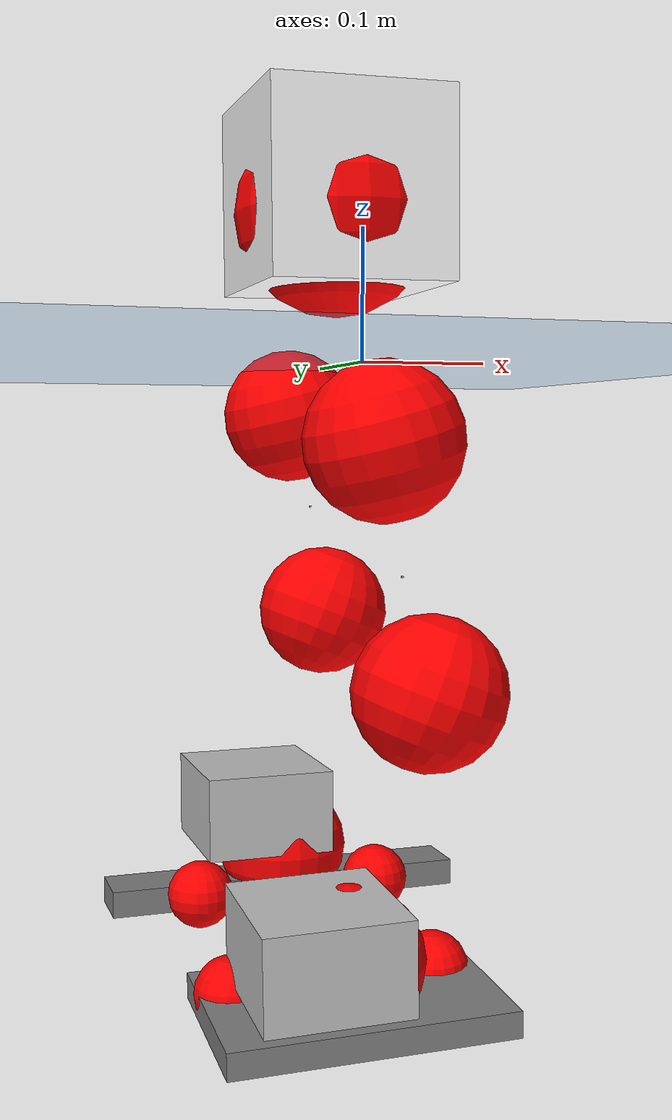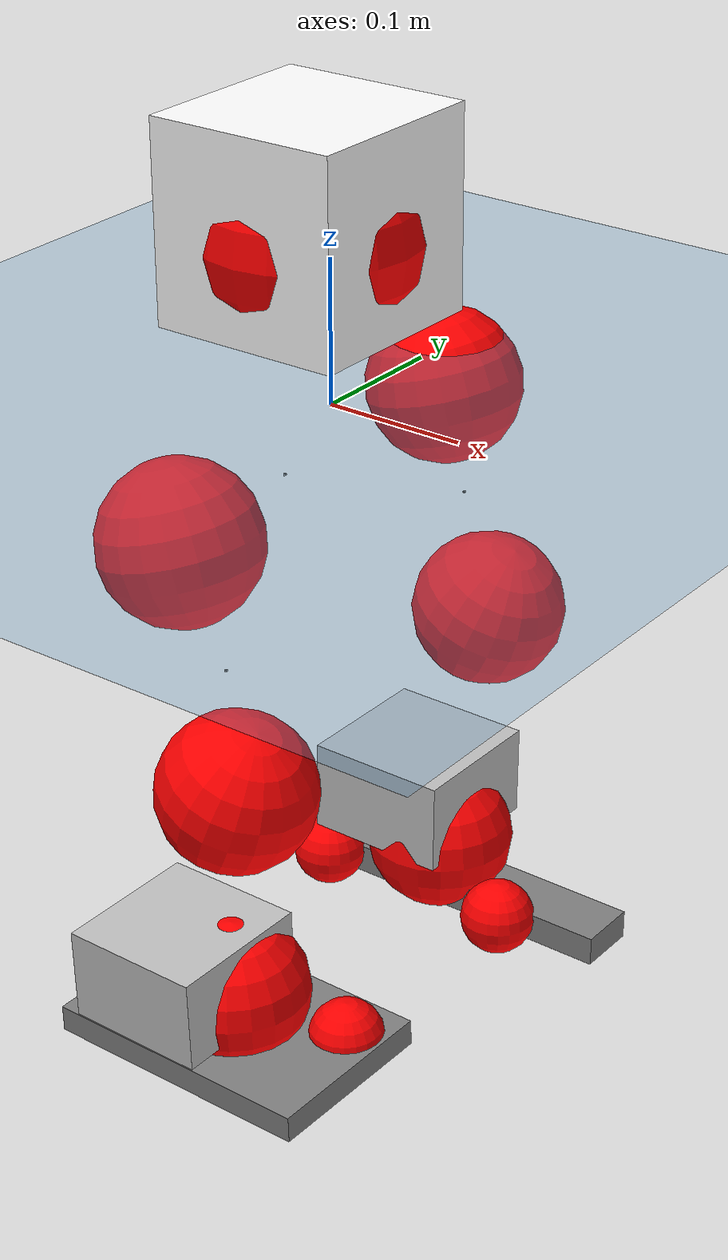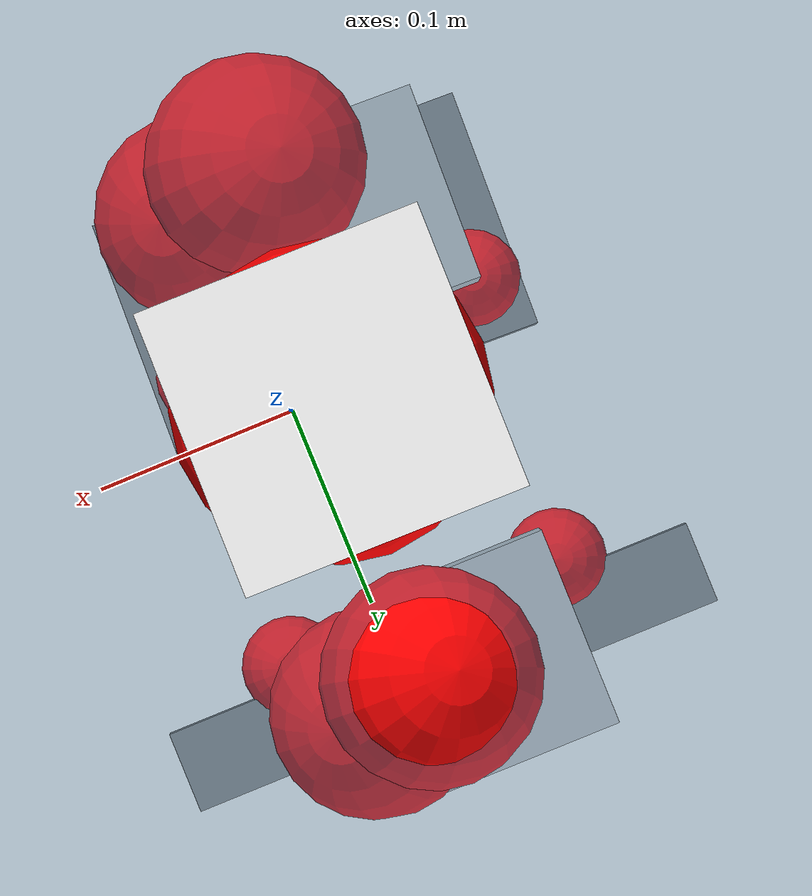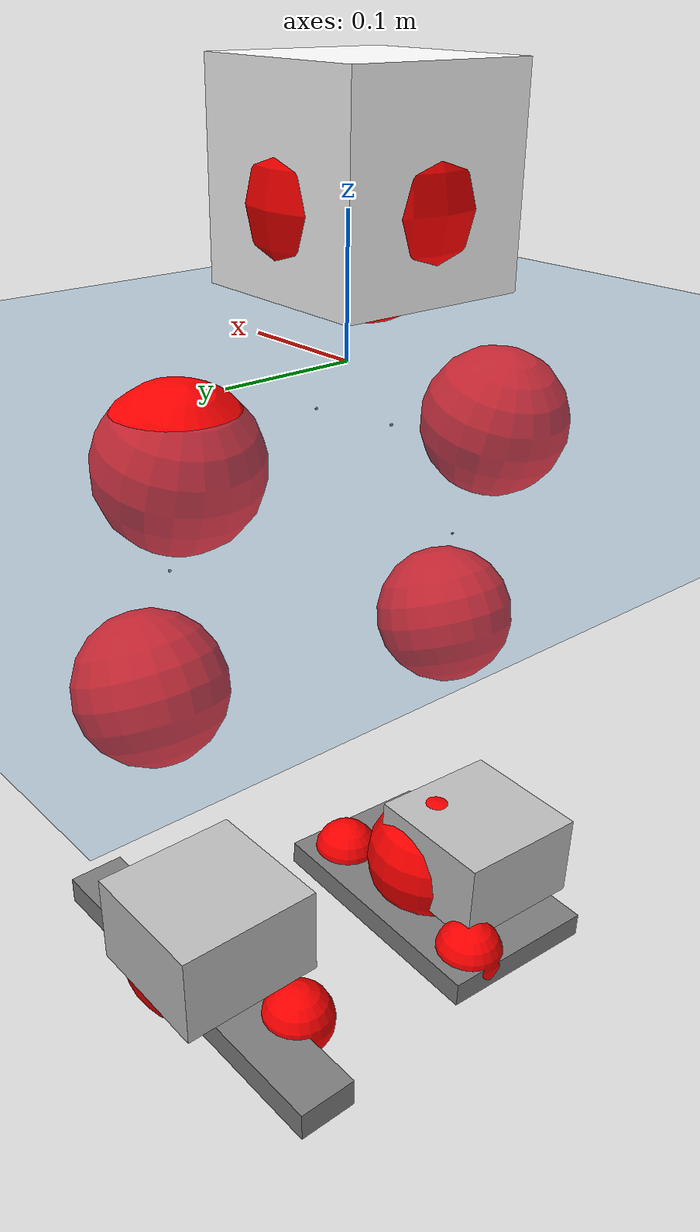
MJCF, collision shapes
<mujoco model="pi_12dof_release_v1">
  <compiler angle="radian" assetdir="assets" balanceinertia="true" inertiafromgeom="false"/>

  <option timestep="0.005" density="1.2" viscosity="2e-05"/>

  <size nkey="1"/>

  <visual>
    <quality shadowsize="8192"/>
    <map shadowclip="0.5"/>
  </visual>

  <default>
    <default class="/">
      <joint armature="0.01" damping="0.01" frictionloss="0.01"/>
      <geom contype="0" conaffinity="0" group="1" solref="-1000 -80"/>
      <site size="0.01 0.005 0.005" group="5"/>
      <general forcelimited="true" biastype="affine" gainprm="20" biasprm="0 -20 -0.5"/>
      <default class="foot">
        <geom size="0.0845 0.036 0.005" type="box" condim="6" group="4" priority="1" friction="0.9 0.2 0.2" solimp="0.015 1 0.005"/>
      </default>
      <default class="reward_collision_sphere">
        <geom group="5" rgba="1 0 0 1"/>
      </default>
    </default>
  </default>

  <asset>
    <texture type="skybox" colorspace="auto" name="//unnamed_texture_0" builtin="gradient" rgb1="0.95 0.95 0.95" rgb2="0.95 0.95 0.95" width="100" height="600"/>
    <texture type="2d" colorspace="auto" name="texplane" builtin="checker" rgb1="0.345 0.575 0.748" rgb2="0.345 0.575 0.748" markrgb="1 1 1" width="512" height="512"/>
    <material name="MatPlane" class="/" texture="texplane" texuniform="true" texrepeat="2 2" specular="0.9"/>
    <mesh name="baselink_1" class="/" file="baselink_1.STL"/>
    <mesh name="r_hip_pitch_link" class="/" file="r_hip_pitch_link.STL"/>
    <mesh name="r_hip_roll_link" class="/" file="r_hip_roll_link.STL"/>
    <mesh name="r_thigh_link" class="/" file="r_thigh_link.STL"/>
    <mesh name="r_calf_link" class="/" file="r_calf_link.STL"/>
    <mesh name="r_ankle_pitch_link" class="/" file="r_ankle_pitch_link.STL"/>
    <mesh name="r_ankle_roll_link" class="/" file="r_ankle_roll_link.STL"/>
    <mesh name="l_hip_pitch_link" class="/" file="l_hip_pitch_link.STL"/>
    <mesh name="l_hip_roll_link" class="/" file="l_hip_roll_link.STL"/>
    <mesh name="l_thigh_link" class="/" file="l_thigh_link.STL"/>
    <mesh name="l_calf_link" class="/" file="l_calf_link.STL"/>
    <mesh name="l_ankle_pitch_link" class="/" file="l_ankle_pitch_link.STL"/>
    <mesh name="l_ankle_roll_link" class="/" file="l_ankle_roll_link.STL"/>
  </asset>

  <worldbody>
    <geom name="floor" class="/" size="100 100 0.125" type="plane" group="0" material="MatPlane"/>
    <light name="toplight_shadow" class="/" pos="0 0 5" dir="0.0990148 0.0990148 -0.990148" type="directional" ambient="0.04 0.04 0.04" diffuse="0.55 0.55 0.55" specular="0.12 0.12 0.12"/>
    <light name="toplight_fill" class="/" pos="0 0 5" dir="0.0990148 0.0990148 -0.990148" type="directional" castshadow="false" ambient="0.04 0.04 0.04" diffuse="0.3 0.3 0.3" specular="0.08 0.08 0.08"/>
    <body name="trunk" pos="-0.0184292 0.00413848 0.010721" quat="0.999964 0.000130331 -0.00565177 -0.00632848">
      <inertial pos="0.0205245 -0.0104908 0.062336" quat="0.70678 -0.0170862 0.014581 0.707077" mass="6.21384" diaginertia="0.0178943 0.0824451 0.0174286"/>
      <joint name="//unnamed_joint_0" type="free"/>
      <geom name="//unnamed_geom_1" class="/" type="mesh" density="0" rgba="1 1 1 1" mesh="baselink_1"/>
      <geom name="//unnamed_geom_2" class="/" size="0.0692799 0.0692799 0.0692799" pos="0 0 0.112088" type="box" rgba="1 1 1 1"/>
      <geom name="//unnamed_geom_3" class="reward_collision_sphere" size="0.0762079" pos="0 0 0.0980768"/>
      <site name="imu" class="/" pos="0.0220453 -0.0582222 -0.082627" size="0.013856"/>
      <camera name="track" class="/" pos="0 -3.19108 0" quat="0.707107 0.707107 0 0" mode="trackcom"/>
      <camera name="ego_camera" class="/" pos="0.0870115 0 0.252198" quat="-0.5 -0.5 0.5 0.5"/>
      <body name="r_hip_pitch_link" pos="-0.000540153 -0.0291422 -0.0561793" quat="0.992309 0.00179255 -0.123677 -0.00482236">
        <inertial pos="-0.0059457 -0.0742343 0.00510643" quat="-0.0344769 0.711824 -0.0440002 0.70013" mass="1.01843" diaginertia="0.000159975 0.000794564 0.000443486"/>
        <joint name="r_hip_pitch_joint" class="/" pos="0 0 0" axis="0.0373559 -0.998465 0.0408824" stiffness="0.0393281" range="-1.52719 1.13173" armature="0.020206" damping="0" frictionloss="0.00410379"/>
        <geom name="//unnamed_geom_4" class="/" type="mesh" density="0" rgba="0.75294 0.75294 0.75294 1" mesh="r_hip_pitch_link"/>
        <geom name="//unnamed_geom_5" class="/" size="0.000692799 0.000692799 0.000692799" type="box" rgba="0.75294 0.75294 0.75294 1"/>
        <body name="r_hip_roll_link" pos="-0.0107691 -0.0951017 -0.0118238" quat="0.99997 0.00193815 -0.00619157 0.00434647">
          <inertial pos="-0.0158254 0.0132171 -0.068416" quat="0.705101 -0.0792559 -0.0824787 0.69982" mass="1.27261" diaginertia="0.000711667 0.00319925 0.000622469"/>
          <joint name="r_hip_roll_joint" class="/" pos="0 0 0" axis="-0.997513 -0.0478994 -0.0517016" range="0.037638 0.773819" armature="0.0201263" damping="0.0861122" frictionloss="0.00323699"/>
          <geom name="//unnamed_geom_6" class="/" type="mesh" density="0" rgba="0.75294 0.75294 0.75294 1" mesh="r_hip_roll_link"/>
          <geom name="//unnamed_geom_7" class="/" size="0.000692799 0.000692799 0.000692799" type="box" rgba="0.75294 0.75294 0.75294 1"/>
          <geom name="//unnamed_geom_8" class="reward_collision_sphere" size="0.0554239"/>
          <body name="r_thigh_link" pos="-0.00544759 0.016925 -0.0950927" quat="0.99998 0.00285076 1.88613e-06 -0.00562185">
            <inertial pos="0.0151567 0.00365323 -0.0798164" quat="0.73215 0.679477 -0.0476116 -4.81392e-05" mass="0.282625" diaginertia="0.000231598 0.000628899 0.00021447"/>
            <joint name="r_thigh_joint" class="/" pos="0 0 0" axis="-0.000117555 0.000318107 -1" stiffness="0.0611282" range="-0.00564165 0.34921" armature="0.0216094" damping="0" frictionloss="0.0266742"/>
            <geom name="//unnamed_geom_9" class="/" type="mesh" density="0" rgba="0.75294 0.75294 0.75294 1" mesh="r_thigh_link"/>
            <geom name="//unnamed_geom_10" class="/" size="0.000692799 0.000692799 0.000692799" type="box" rgba="0.75294 0.75294 0.75294 1"/>
            <body name="r_calf_link" pos="-0.00539728 -0.012447 -0.0813455" quat="0.948099 0.00483454 0.317895 -0.00519775">
              <inertial pos="-0.0116104 0.0142568 -0.0965804" quat="0.996884 -0.0398461 0.0672701 0.010488" mass="2.16262" diaginertia="0.0100064 0.0412315 0.00125635"/>
              <joint name="r_calf_joint" class="/" pos="0 0 0" axis="0.055251 -0.99695 0.055125" stiffness="0.0788927" range="-2.00864 0.750646" armature="0.0185397" damping="0" frictionloss="0.00392512"/>
              <geom name="//unnamed_geom_11" class="/" type="mesh" density="0" rgba="0.75294 0.75294 0.75294 1" mesh="r_calf_link"/>
              <geom name="//unnamed_geom_12" class="/" size="0.000692799 0.000692799 0.000692799" type="box" rgba="0.75294 0.75294 0.75294 1"/>
              <geom name="//unnamed_geom_13" class="reward_collision_sphere" size="0.0554239"/>
              <body name="r_ankle_pitch_link" pos="-0.00122088 0.0182158 -0.196533" quat="0.980146 -0.00106097 -0.198273 -0.00109271">
                <inertial pos="-0.00634918 0.01991 0.00466287" quat="-0.0139484 0.690376 -0.061118 0.720729" mass="0.447974" diaginertia="0.000776714 0.00288785 0.000593959"/>
                <joint name="r_ankle_pitch_joint" class="/" pos="0 0 0" axis="-0.0471755 -0.996333 -0.0713849" range="-1.50826 0.530968" armature="0.0112056" damping="0.0817258" frictionloss="0.00558922"/>
                <geom name="//unnamed_geom_14" class="/" type="mesh" density="0" rgba="0.75294 0.75294 0.75294 1" mesh="r_ankle_pitch_link"/>
                <geom name="//unnamed_geom_15" class="/" size="0.0540383 0.0554239 0.0346399" type="box" rgba="0.75294 0.75294 0.75294 1"/>
                <body name="r_ankle_roll_link" pos="0.0871482 0.0191696 0.0087107" quat="1 7.8095e-05 3.03842e-05 4.64878e-06">
                  <inertial pos="-0.0258666 -0.00364126 -0.0228285" quat="0.623499 0.38894 0.417576 0.53442" mass="1.4351" diaginertia="0.00238923 0.0105353 0.00178801"/>
                  <joint name="r_ankle_roll_joint" class="/" pos="0 0 0" axis="-0.996047 0.0782298 -0.0420712" range="0.185844 0.0734556" armature="0.00286418" damping="0.0343387" frictionloss="0.0152442"/>
                  <geom name="//unnamed_geom_16" class="/" type="mesh" density="0" rgba="0.75294 0.75294 0.75294 1" mesh="r_ankle_roll_link"/>
                  <geom name="//unnamed_geom_17" class="/" type="mesh" rgba="0.75294 0.75294 0.75294 1" mesh="r_ankle_roll_link"/>
                  <geom name="right_foot" class="foot" size="0.105934 0.0677663 0.00994397" pos="-0.0591678 0 -0.0616483"/>
                  <geom name="//unnamed_geom_19" class="reward_collision_sphere" size="0.0554239" pos="-0.0580077 0 -0.0280219"/>
                  <geom name="//unnamed_geom_20" class="reward_collision_sphere" size="0.027712" pos="0.0174023 0.0319108 -0.0560439"/>
                  <geom name="//unnamed_geom_21" class="reward_collision_sphere" size="0.027712" pos="-0.139218 0.0319108 -0.0560439"/>
                  <site name="right_foot" class="foot" pos="-0.0591678 0 -0.0616483" size="0.013856"/>
                </body>
              </body>
            </body>
          </body>
        </body>
      </body>
      <body name="l_hip_pitch_link" pos="0.00216582 0.0352421 -0.0321087" quat="0.992036 0.000358065 -0.125953 0.00039466">
        <inertial pos="-0.0084196 0.0693503 0.0136864" quat="-0.0460828 0.666816 -0.0480012 0.742246" mass="0.743288" diaginertia="0.00023253 0.00102976 0.000393732"/>
        <joint name="l_hip_pitch_joint" class="/" pos="0 0 0" axis="0.0904666 0.995866 0.00813405" stiffness="0.0470747" range="-1.42778 1.73521" armature="0.0146271" damping="0" frictionloss="0.0130595"/>
        <geom name="//unnamed_geom_22" class="/" type="mesh" density="0" rgba="0.75294 0.75294 0.75294 1" mesh="l_hip_pitch_link"/>
        <geom name="//unnamed_geom_23" class="/" size="0.000692799 0.000692799 0.000692799" type="box" rgba="0.75294 0.75294 0.75294 1"/>
        <body name="l_hip_roll_link" pos="-0.00253416 0.106537 -0.0162514" quat="0.999996 0.00106252 9.38741e-06 0.00246635">
          <inertial pos="-0.00270052 0.0013298 -0.0913274" quat="0.721355 -0.0418151 -0.0666549 0.688081" mass="0.727231" diaginertia="0.0006039 0.00239165 0.000524051"/>
          <joint name="l_hip_roll_joint" class="/" pos="0 0 0" axis="-0.999012 0.0315697 0.0312654" stiffness="0.0935898" range="-0.394205 -0.179121" armature="0.0211263" damping="0" frictionloss="0.0200937"/>
          <geom name="//unnamed_geom_24" class="/" type="mesh" density="0" rgba="0.75294 0.75294 0.75294 1" mesh="l_hip_roll_link"/>
          <geom name="//unnamed_geom_25" class="/" size="0.000692799 0.000692799 0.000692799" type="box" rgba="0.75294 0.75294 0.75294 1"/>
          <geom name="//unnamed_geom_26" class="reward_collision_sphere" size="0.0554239"/>
          <body name="l_thigh_link" pos="-0.00180013 -0.0002194 -0.0799885" quat="0.999994 0.00169028 0.00101052 -0.00273078">
            <inertial pos="0.009053 -0.0198401 -0.0707474" quat="0.687673 0.724001 0.0202828 -0.0501668" mass="0.265477" diaginertia="0.000267793 0.000829501 0.000341436"/>
            <joint name="l_thigh_joint" class="/" pos="0 0 0" axis="0.0307943 0.0331834 -0.998975" range="-0.675532 0.0269768" armature="0.00661734" damping="0.092241" frictionloss="0.00598291"/>
            <geom name="//unnamed_geom_27" class="/" type="mesh" density="0" rgba="0.75294 0.75294 0.75294 1" mesh="l_thigh_link"/>
            <geom name="//unnamed_geom_28" class="/" size="0.000692799 0.000692799 0.000692799" type="box" rgba="0.75294 0.75294 0.75294 1"/>
            <body name="l_calf_link" pos="-0.00896004 0.0112416 -0.0923682" quat="0.946246 -0.00730365 0.323359 0.00210757">
              <inertial pos="-0.0174771 -0.00791696 -0.0799875" quat="0.997345 0.0446403 0.0238233 0.0523652" mass="2.12294" diaginertia="0.00752683 0.0370729 0.000980812"/>
              <joint name="l_calf_joint" class="/" pos="0 0 0" axis="0.0150163 0.998347 0.0554711" stiffness="0.0375352" range="-0.540043 1.89444" armature="0.00857498" damping="0" frictionloss="0.0246551"/>
              <geom name="//unnamed_geom_29" class="/" type="mesh" density="0" rgba="0.75294 0.75294 0.75294 1" mesh="l_calf_link"/>
              <geom name="//unnamed_geom_30" class="/" size="0.000692799 0.000692799 0.000692799" type="box" rgba="0.75294 0.75294 0.75294 1"/>
              <geom name="//unnamed_geom_31" class="reward_collision_sphere" size="0.0554239"/>
              <body name="l_ankle_pitch_link" pos="0.00768344 0.00418489 -0.178291" quat="0.980093 0.000121954 -0.198539 3.31706e-05">
                <inertial pos="0.0107392 -0.00311092 -5.03888e-05" quat="-0.00862289 0.70473 0.0108337 0.709341" mass="0.554031" diaginertia="0.00068847 0.00190203 0.000629156"/>
                <joint name="l_ankle_pitch_joint" class="/" pos="0 0 0" axis="-0.00726878 0.999965 -0.00423219" stiffness="0.0600647" range="-0.578517 1.21738" armature="0.0140042" damping="0.0415606" frictionloss="0.00671951"/>
                <geom name="//unnamed_geom_32" class="/" type="mesh" density="0" rgba="0.75294 0.75294 0.75294 1" mesh="l_ankle_pitch_link"/>
                <geom name="//unnamed_geom_33" class="/" size="0.0540383 0.0554239 0.0346399" type="box" rgba="0.75294 0.75294 0.75294 1"/>
                <body name="l_ankle_roll_link" pos="0.0816088 -0.00306898 -0.0108835" quat="0.999998 0.00145182 0.000429745 0.0013998">
                  <inertial pos="-0.013742 -0.00492434 -0.0176551" quat="0.522037 0.46883 0.453792 0.549316" mass="1.47239" diaginertia="0.00212841 0.0104243 0.00125786"/>
                  <joint name="l_ankle_roll_joint" class="/" pos="0 0 0" axis="-0.9962 0.0870766 0.00165933" stiffness="0.0791144" range="-0.138383 -0.0579539" armature="0.0202774" damping="0" frictionloss="0.0206162"/>
                  <geom name="//unnamed_geom_34" class="/" type="mesh" density="0" rgba="0.75294 0.75294 0.75294 1" mesh="l_ankle_roll_link"/>
                  <geom name="//unnamed_geom_35" class="/" type="mesh" rgba="0.75294 0.75294 0.75294 1" mesh="l_ankle_roll_link"/>
                  <geom name="left_foot" class="foot" size="0.153084 0.0228112 0.0109638" pos="-0.0591678 0 -0.0616483"/>
                  <geom name="//unnamed_geom_37" class="reward_collision_sphere" size="0.0554239" pos="-0.0580077 0 -0.0280219"/>
                  <geom name="//unnamed_geom_38" class="reward_collision_sphere" size="0.027712" pos="0.0174023 -0.0319108 -0.0560439"/>
                  <geom name="//unnamed_geom_39" class="reward_collision_sphere" size="0.027712" pos="-0.139218 -0.0319108 -0.0560439"/>
                  <site name="left_foot" class="foot" pos="-0.0591678 0 -0.0616483" size="0.013856"/>
                </body>
              </body>
            </body>
          </body>
        </body>
      </body>
    </body>
  </worldbody>

  <contact>
    <pair class="/" geom1="floor" geom2="right_foot" name="//unnamed_contact_1"/>
    <pair class="/" geom1="floor" geom2="left_foot" name="//unnamed_contact_0"/>
  </contact>

  <actuator>
    <general name="r_hip_pitch_joint" class="/" joint="r_hip_pitch_joint" forcerange="-31.9515 31.9515" gainprm="25.4703" biasprm="0 -25.4703 -0.521109"/>
    <general name="r_hip_roll_joint" class="/" joint="r_hip_roll_joint" forcerange="-15.6113 15.6113" gainprm="25.4703" biasprm="0 -25.4703 -0.521109"/>
    <general name="r_thigh_joint" class="/" joint="r_thigh_joint" forcerange="-35.7699 35.7699" gainprm="25.4703" biasprm="0 -25.4703 -0.521109"/>
    <general name="r_calf_joint" class="/" joint="r_calf_joint" forcerange="-9.2854 9.2854" gainprm="25.4703" biasprm="0 -25.4703 -0.521109"/>
    <general name="r_ankle_pitch_joint" class="/" joint="r_ankle_pitch_joint" forcerange="-21.9208 21.9208" gainprm="25.4703" biasprm="0 -25.4703 -0.521109"/>
    <general name="r_ankle_roll_joint" class="/" joint="r_ankle_roll_joint" forcerange="-47.1384 47.1384" gainprm="25.4703" biasprm="0 -25.4703 -0.521109"/>
    <general name="l_hip_pitch_joint" class="/" joint="l_hip_pitch_joint" forcerange="-29.6823 29.6823" gainprm="25.4703" biasprm="0 -25.4703 -0.521109"/>
    <general name="l_hip_roll_joint" class="/" joint="l_hip_roll_joint" forcerange="-41.606 41.606" gainprm="25.4703" biasprm="0 -25.4703 -0.521109"/>
    <general name="l_thigh_joint" class="/" joint="l_thigh_joint" forcerange="-34.9037 34.9037" gainprm="25.4703" biasprm="0 -25.4703 -0.521109"/>
    <general name="l_calf_joint" class="/" joint="l_calf_joint" forcerange="-32.8403 32.8403" gainprm="25.4703" biasprm="0 -25.4703 -0.521109"/>
    <general name="l_ankle_pitch_joint" class="/" joint="l_ankle_pitch_joint" forcerange="-16.713 16.713" gainprm="25.4703" biasprm="0 -25.4703 -0.521109"/>
    <general name="l_ankle_roll_joint" class="/" joint="l_ankle_roll_joint" forcerange="-31.2535 31.2535" gainprm="25.4703" biasprm="0 -25.4703 -0.521109"/>
  </actuator>

  <sensor>
    <gyro site="imu" name="imu_angular_velocity"/>
    <velocimeter site="imu" name="imu_linear_velocity"/>
    <framelinvel objtype="site" objname="left_foot" name="left_foot_global_linear_velocity"/>
    <framelinvel objtype="site" objname="right_foot" name="right_foot_global_linear_velocity"/>
  </sensor>

  <keyframe>
    <key name="home" qpos="0 0 0.291 1 0 0 0 0.4 0 0 -0.8 0.4 0 -0.4 0 0 0.8 -0.4 0"/>
  </keyframe>
</mujoco>
